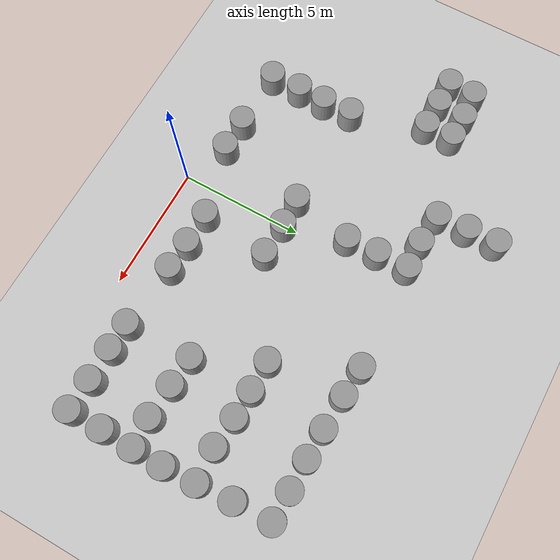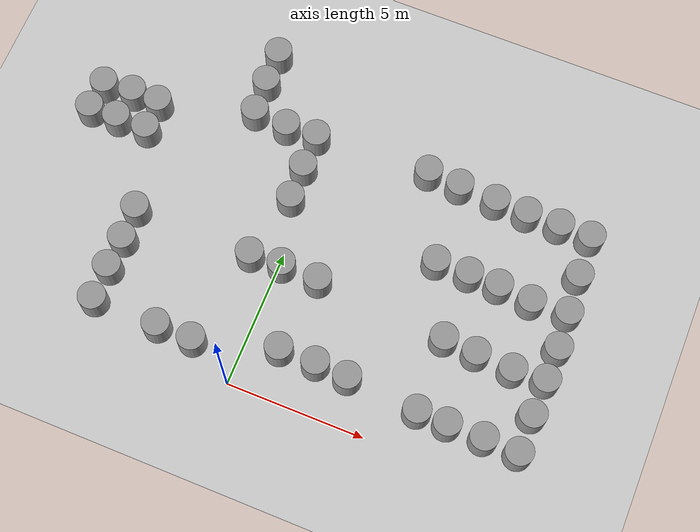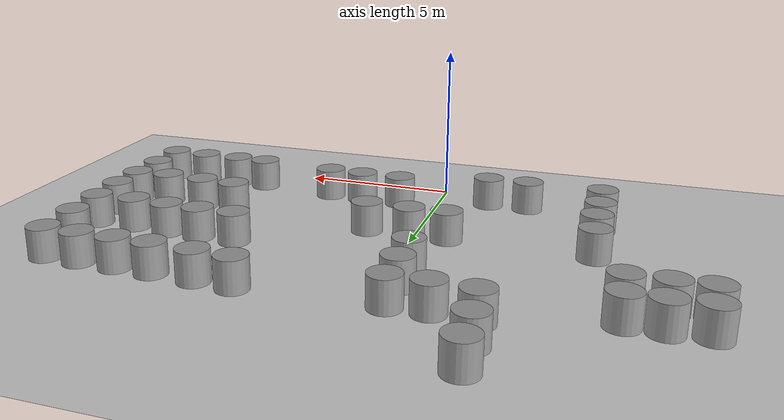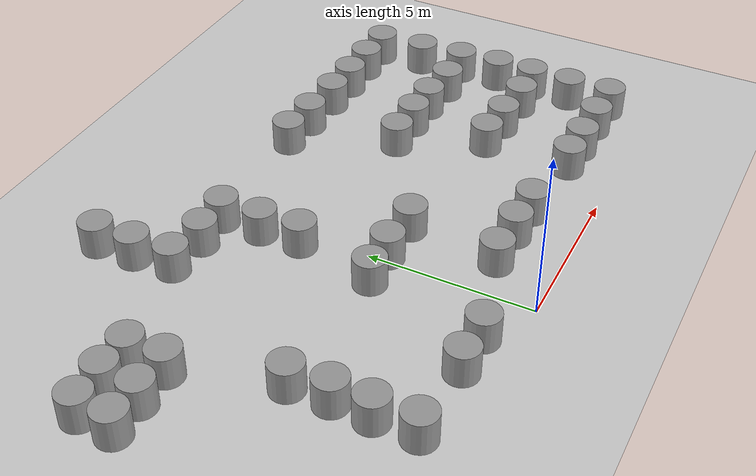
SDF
<sdf version="1.6">
 <world name="default">
  <model name="ground_plane">
   <static>1</static>
   <link name="link">
    <collision name="collision">
     <geometry><plane><normal>0 0 1</normal><size>100 100</size></plane></geometry>
     <surface><friction><ode><mu>100</mu><mu2>50</mu2></ode></friction></surface>
    </collision>
    <visual name="visual">
     <cast_shadows>0</cast_shadows>
     <geometry><plane><normal>0 0 1</normal><size>100 100</size></plane></geometry>
     <material>
      <script><uri>file://media/materials/scripts/gazebo.material</uri><name>Gazebo/Grey</name></script>
     </material>
    </visual>
   </link>
  </model>
  <model name="unit_cylinder_0">
   <pose>-8.51606 8.48994 0.499996 2e-06 -0 0</pose>
   <link name="link">
    <inertial>
     <mass>1</mass>
     <inertia><ixx>0.145833</ixx><ixy>0</ixy><ixz>0</ixz><iyy>0.145833</iyy><iyz>0</iyz><izz>0.125</izz></inertia>
    </inertial>
    <collision name="collision">
     <geometry><cylinder><radius>0.5</radius><length>1</length></cylinder></geometry>
    </collision>
    <visual name="visual">
     <geometry><cylinder><radius>0.5</radius><length>1</length></cylinder></geometry>
     <material>
      <script><name>Gazebo/Grey</name><uri>file://media/materials/scripts/gazebo.material</uri></script>
     </material>
    </visual>
   </link>
  </model>
  <model name="unit_cylinder_1">
   <pose>-7.41702 8.57099 0.499994 -2e-06 0 0</pose>
   <link name="link">
    <inertial>
     <mass>1</mass>
     <inertia><ixx>0.145833</ixx><ixy>0</ixy><ixz>0</ixz><iyy>0.145833</iyy><iyz>0</iyz><izz>0.125</izz></inertia>
    </inertial>
    <collision name="collision">
     <geometry><cylinder><radius>0.5</radius><length>1</length></cylinder></geometry>
    </collision>
    <visual name="visual">
     <geometry><cylinder><radius>0.5</radius><length>1</length></cylinder></geometry>
     <material>
      <script><name>Gazebo/Grey</name><uri>file://media/materials/scripts/gazebo.material</uri></script>
     </material>
    </visual>
   </link>
  </model>
  <model name="unit_cylinder_2">
   <pose>-6.39638 8.54646 0.499996 2e-06 -0 0</pose>
   <link name="link">
    <inertial>
     <mass>1</mass>
     <inertia><ixx>0.145833</ixx><ixy>0</ixy><ixz>0</ixz><iyy>0.145833</iyy><iyz>0</iyz><izz>0.125</izz></inertia>
    </inertial>
    <collision name="collision">
     <geometry><cylinder><radius>0.5</radius><length>1</length></cylinder></geometry>
    </collision>
    <visual name="visual">
     <geometry><cylinder><radius>0.5</radius><length>1</length></cylinder></geometry>
     <material>
      <script><name>Gazebo/Grey</name><uri>file://media/materials/scripts/gazebo.material</uri></script>
     </material>
    </visual>
   </link>
  </model>
  <model name="unit_cylinder_3">
   <pose>-8.57488 7.4197 0.499994 -2e-06 0 0</pose>
   <link name="link">
    <inertial>
     <mass>1</mass>
     <inertia><ixx>0.145833</ixx><ixy>0</ixy><ixz>0</ixz><iyy>0.145833</iyy><iyz>0</iyz><izz>0.125</izz></inertia>
    </inertial>
    <collision name="collision">
     <geometry><cylinder><radius>0.5</radius><length>1</length></cylinder></geometry>
    </collision>
    <visual name="visual">
     <geometry><cylinder><radius>0.5</radius><length>1</length></cylinder></geometry>
     <material>
      <script><name>Gazebo/Grey</name><uri>file://media/materials/scripts/gazebo.material</uri></script>
     </material>
    </visual>
   </link>
  </model>
  <model name="unit_cylinder_3_clone">
   <pose>-7.51975 7.42894 0.499996 2e-06 -0 0</pose>
   <link name="link">
    <inertial>
     <mass>1</mass>
     <inertia><ixx>0.145833</ixx><ixy>0</ixy><ixz>0</ixz><iyy>0.145833</iyy><iyz>0</iyz><izz>0.125</izz></inertia>
    </inertial>
    <collision name="collision">
     <geometry><cylinder><radius>0.5</radius><length>1</length></cylinder></geometry>
    </collision>
    <visual name="visual">
     <geometry><cylinder><radius>0.5</radius><length>1</length></cylinder></geometry>
     <material>
      <script><name>Gazebo/Grey</name><uri>file://media/materials/scripts/gazebo.material</uri></script>
     </material>
    </visual>
   </link>
  </model>
  <model name="unit_cylinder_3_clone_0">
   <pose>-6.37172 7.42467 0.499994 -2e-06 0 0</pose>
   <link name="link">
    <inertial>
     <mass>1</mass>
     <inertia><ixx>0.145833</ixx><ixy>0</ixy><ixz>0</ixz><iyy>0.145833</iyy><iyz>0</iyz><izz>0.125</izz></inertia>
    </inertial>
    <collision name="collision">
     <geometry><cylinder><radius>0.5</radius><length>1</length></cylinder></geometry>
    </collision>
    <visual name="visual">
     <geometry><cylinder><radius>0.5</radius><length>1</length></cylinder></geometry>
     <material>
      <script><name>Gazebo/Grey</name><uri>file://media/materials/scripts/gazebo.material</uri></script>
     </material>
    </visual>
   </link>
  </model>
  <model name="unit_cylinder_3_clone_1">
   <pose>-5.41765 4.49836 0.499996 2e-06 -0 0</pose>
   <link name="link">
    <inertial>
     <mass>1</mass>
     <inertia><ixx>0.145833</ixx><ixy>0</ixy><ixz>0</ixz><iyy>0.145833</iyy><iyz>0</iyz><izz>0.125</izz></inertia>
    </inertial>
    <collision name="collision">
     <geometry><cylinder><radius>0.5</radius><length>1</length></cylinder></geometry>
    </collision>
    <visual name="visual">
     <geometry><cylinder><radius>0.5</radius><length>1</length></cylinder></geometry>
     <material>
      <script><name>Gazebo/Grey</name><uri>file://media/materials/scripts/gazebo.material</uri></script>
     </material>
    </visual>
   </link>
  </model>
  <model name="unit_cylinder_3_clone_2">
   <pose>-5.36946 3.2912 0.499994 -2e-06 -1e-06 0</pose>
   <link name="link">
    <inertial>
     <mass>1</mass>
     <inertia><ixx>0.145833</ixx><ixy>0</ixy><ixz>0</ixz><iyy>0.145833</iyy><iyz>0</iyz><izz>0.125</izz></inertia>
    </inertial>
    <collision name="collision">
     <geometry><cylinder><radius>0.5</radius><length>1</length></cylinder></geometry>
    </collision>
    <visual name="visual">
     <geometry><cylinder><radius>0.5</radius><length>1</length></cylinder></geometry>
     <material>
      <script><name>Gazebo/Grey</name><uri>file://media/materials/scripts/gazebo.material</uri></script>
     </material>
    </visual>
   </link>
  </model>
  <model name="unit_cylinder_3_clone_3">
   <pose>-5.40207 2.1536 0.499996 2e-06 1e-06 0</pose>
   <link name="link">
    <inertial>
     <mass>1</mass>
     <inertia><ixx>0.145833</ixx><ixy>0</ixy><ixz>0</ixz><iyy>0.145833</iyy><iyz>0</iyz><izz>0.125</izz></inertia>
    </inertial>
    <collision name="collision">
     <geometry><cylinder><radius>0.5</radius><length>1</length></cylinder></geometry>
    </collision>
    <visual name="visual">
     <geometry><cylinder><radius>0.5</radius><length>1</length></cylinder></geometry>
     <material>
      <script><name>Gazebo/Grey</name><uri>file://media/materials/scripts/gazebo.material</uri></script>
     </material>
    </visual>
   </link>
  </model>
  <model name="unit_cylinder_3_clone_4">
   <pose>-5.37943 0.911977 0.499994 -2e-06 -1e-06 0</pose>
   <link name="link">
    <inertial>
     <mass>1</mass>
     <inertia><ixx>0.145833</ixx><ixy>0</ixy><ixz>0</ixz><iyy>0.145833</iyy><iyz>0</iyz><izz>0.125</izz></inertia>
    </inertial>
    <collision name="collision">
     <geometry><cylinder><radius>0.5</radius><length>1</length></cylinder></geometry>
    </collision>
    <visual name="visual">
     <geometry><cylinder><radius>0.5</radius><length>1</length></cylinder></geometry>
     <material>
      <script><name>Gazebo/Grey</name><uri>file://media/materials/scripts/gazebo.material</uri></script>
     </material>
    </visual>
   </link>
  </model>
  <model name="unit_cylinder_3_clone_6">
   <pose>-2.96863 0.874308 0.499994 -2e-06 -1e-06 0</pose>
   <link name="link">
    <inertial>
     <mass>1</mass>
     <inertia><ixx>0.145833</ixx><ixy>0</ixy><ixz>0</ixz><iyy>0.145833</iyy><iyz>0</iyz><izz>0.125</izz></inertia>
    </inertial>
    <collision name="collision">
     <geometry><cylinder><radius>0.5</radius><length>1</length></cylinder></geometry>
    </collision>
    <visual name="visual">
     <geometry><cylinder><radius>0.5</radius><length>1</length></cylinder></geometry>
     <material>
      <script><name>Gazebo/Grey</name><uri>file://media/materials/scripts/gazebo.material</uri></script>
     </material>
    </visual>
   </link>
  </model>
  <model name="unit_cylinder_3_clone_7">
   <pose>-1.65108 0.864726 0.499996 2e-06 1e-06 0</pose>
   <link name="link">
    <inertial>
     <mass>1</mass>
     <inertia><ixx>0.145833</ixx><ixy>0</ixy><ixz>0</ixz><iyy>0.145833</iyy><iyz>0</iyz><izz>0.125</izz></inertia>
    </inertial>
    <collision name="collision">
     <geometry><cylinder><radius>0.5</radius><length>1</length></cylinder></geometry>
    </collision>
    <visual name="visual">
     <geometry><cylinder><radius>0.5</radius><length>1</length></cylinder></geometry>
     <material>
      <script><name>Gazebo/Grey</name><uri>file://media/materials/scripts/gazebo.material</uri></script>
     </material>
    </visual>
   </link>
  </model>
  <model name="unit_cylinder_3_clone_17">
   <pose>-1.02332 4.44056 0.499996 3e-06 1e-06 -0</pose>
   <link name="link">
    <inertial>
     <mass>1</mass>
     <inertia><ixx>0.145833</ixx><ixy>0</ixy><ixz>0</ixz><iyy>0.145833</iyy><iyz>0</iyz><izz>0.125</izz></inertia>
    </inertial>
    <collision name="collision">
     <geometry><cylinder><radius>0.5</radius><length>1</length></cylinder></geometry>
    </collision>
    <visual name="visual">
     <geometry><cylinder><radius>0.5</radius><length>1</length></cylinder></geometry>
     <material>
      <script><name>Gazebo/Grey</name><uri>file://media/materials/scripts/gazebo.material</uri></script>
     </material>
    </visual>
   </link>
  </model>
  <model name="unit_cylinder_3_clone_18">
   <pose>0.150944 4.48466 0.499994 -3e-06 -1e-06 -0</pose>
   <link name="link">
    <inertial>
     <mass>1</mass>
     <inertia><ixx>0.145833</ixx><ixy>0</ixy><ixz>0</ixz><iyy>0.145833</iyy><iyz>0</iyz><izz>0.125</izz></inertia>
    </inertial>
    <collision name="collision">
     <geometry><cylinder><radius>0.5</radius><length>1</length></cylinder></geometry>
    </collision>
    <visual name="visual">
     <geometry><cylinder><radius>0.5</radius><length>1</length></cylinder></geometry>
     <material>
      <script><name>Gazebo/Grey</name><uri>file://media/materials/scripts/gazebo.material</uri></script>
     </material>
    </visual>
   </link>
  </model>
  <model name="unit_cylinder_3_clone_19">
   <pose>1.52572 4.44658 0.499996 3e-06 1e-06 -0</pose>
   <link name="link">
    <inertial>
     <mass>1</mass>
     <inertia><ixx>0.145833</ixx><ixy>0</ixy><ixz>0</ixz><iyy>0.145833</iyy><iyz>0</iyz><izz>0.125</izz></inertia>
    </inertial>
    <collision name="collision">
     <geometry><cylinder><radius>0.5</radius><length>1</length></cylinder></geometry>
    </collision>
    <visual name="visual">
     <geometry><cylinder><radius>0.5</radius><length>1</length></cylinder></geometry>
     <material>
      <script><name>Gazebo/Grey</name><uri>file://media/materials/scripts/gazebo.material</uri></script>
     </material>
    </visual>
   </link>
  </model>
  <model name="unit_cylinder_3_clone_20">
   <pose>3.64653 9.65426 0.499994 -3e-06 -1e-06 -0</pose>
   <link name="link">
    <inertial>
     <mass>1</mass>
     <inertia><ixx>0.145833</ixx><ixy>0</ixy><ixz>0</ixz><iyy>0.145833</iyy><iyz>0</iyz><izz>0.125</izz></inertia>
    </inertial>
    <collision name="collision">
     <geometry><cylinder><radius>0.5</radius><length>1</length></cylinder></geometry>
    </collision>
    <visual name="visual">
     <geometry><cylinder><radius>0.5</radius><length>1</length></cylinder></geometry>
     <material>
      <script><name>Gazebo/Grey</name><uri>file://media/materials/scripts/gazebo.material</uri></script>
     </material>
    </visual>
   </link>
  </model>
  <model name="unit_cylinder_3_clone_21">
   <pose>4.85553 9.57337 0.499996 3e-06 1e-06 -0</pose>
   <link name="link">
    <inertial>
     <mass>1</mass>
     <inertia><ixx>0.145833</ixx><ixy>0</ixy><ixz>0</ixz><iyy>0.145833</iyy><iyz>0</iyz><izz>0.125</izz></inertia>
    </inertial>
    <collision name="collision">
     <geometry><cylinder><radius>0.5</radius><length>1</length></cylinder></geometry>
    </collision>
    <visual name="visual">
     <geometry><cylinder><radius>0.5</radius><length>1</length></cylinder></geometry>
     <material>
      <script><name>Gazebo/Grey</name><uri>file://media/materials/scripts/gazebo.material</uri></script>
     </material>
    </visual>
   </link>
  </model>
  <model name="unit_cylinder_3_clone_22">
   <pose>6.2344 9.50314 0.499994 -3e-06 -1e-06 -0</pose>
   <link name="link">
    <inertial>
     <mass>1</mass>
     <inertia><ixx>0.145833</ixx><ixy>0</ixy><ixz>0</ixz><iyy>0.145833</iyy><iyz>0</iyz><izz>0.125</izz></inertia>
    </inertial>
    <collision name="collision">
     <geometry><cylinder><radius>0.5</radius><length>1</length></cylinder></geometry>
    </collision>
    <visual name="visual">
     <geometry><cylinder><radius>0.5</radius><length>1</length></cylinder></geometry>
     <material>
      <script><name>Gazebo/Grey</name><uri>file://media/materials/scripts/gazebo.material</uri></script>
     </material>
    </visual>
   </link>
  </model>
  <model name="unit_cylinder_3_clone_23">
   <pose>7.41881 9.47437 0.499996 3e-06 1e-06 -0</pose>
   <link name="link">
    <inertial>
     <mass>1</mass>
     <inertia><ixx>0.145833</ixx><ixy>0</ixy><ixz>0</ixz><iyy>0.145833</iyy><iyz>0</iyz><izz>0.125</izz></inertia>
    </inertial>
    <collision name="collision">
     <geometry><cylinder><radius>0.5</radius><length>1</length></cylinder></geometry>
    </collision>
    <visual name="visual">
     <geometry><cylinder><radius>0.5</radius><length>1</length></cylinder></geometry>
     <material>
      <script><name>Gazebo/Grey</name><uri>file://media/materials/scripts/gazebo.material</uri></script>
     </material>
    </visual>
   </link>
  </model>
  <model name="unit_cylinder_3_clone_24">
   <pose>8.621 9.4767 0.499994 -3e-06 -1e-06 -0</pose>
   <link name="link">
    <inertial>
     <mass>1</mass>
     <inertia><ixx>0.145833</ixx><ixy>0</ixy><ixz>0</ixz><iyy>0.145833</iyy><iyz>0</iyz><izz>0.125</izz></inertia>
    </inertial>
    <collision name="collision">
     <geometry><cylinder><radius>0.5</radius><length>1</length></cylinder></geometry>
    </collision>
    <visual name="visual">
     <geometry><cylinder><radius>0.5</radius><length>1</length></cylinder></geometry>
     <material>
      <script><name>Gazebo/Grey</name><uri>file://media/materials/scripts/gazebo.material</uri></script>
     </material>
    </visual>
   </link>
  </model>
  <model name="unit_cylinder_3_clone_25">
   <pose>9.77818 9.44871 0.499996 3e-06 1e-06 -0</pose>
   <link name="link">
    <inertial>
     <mass>1</mass>
     <inertia><ixx>0.145833</ixx><ixy>0</ixy><ixz>0</ixz><iyy>0.145833</iyy><iyz>0</iyz><izz>0.125</izz></inertia>
    </inertial>
    <collision name="collision">
     <geometry><cylinder><radius>0.5</radius><length>1</length></cylinder></geometry>
    </collision>
    <visual name="visual">
     <geometry><cylinder><radius>0.5</radius><length>1</length></cylinder></geometry>
     <material>
      <script><name>Gazebo/Grey</name><uri>file://media/materials/scripts/gazebo.material</uri></script>
     </material>
    </visual>
   </link>
  </model>
  <model name="unit_cylinder_3_clone_26">
   <pose>9.84593 7.94617 0.499994 -3e-06 -1e-06 -0</pose>
   <link name="link">
    <inertial>
     <mass>1</mass>
     <inertia><ixx>0.145833</ixx><ixy>0</ixy><ixz>0</ixz><iyy>0.145833</iyy><iyz>0</iyz><izz>0.125</izz></inertia>
    </inertial>
    <collision name="collision">
     <geometry><cylinder><radius>0.5</radius><length>1</length></cylinder></geometry>
    </collision>
    <visual name="visual">
     <geometry><cylinder><radius>0.5</radius><length>1</length></cylinder></geometry>
     <material>
      <script><name>Gazebo/Grey</name><uri>file://media/materials/scripts/gazebo.material</uri></script>
     </material>
    </visual>
   </link>
  </model>
  <model name="unit_cylinder_3_clone_27">
   <pose>9.947 6.53993 0.499996 3e-06 1e-06 -0</pose>
   <link name="link">
    <inertial>
     <mass>1</mass>
     <inertia><ixx>0.145833</ixx><ixy>0</ixy><ixz>0</ixz><iyy>0.145833</iyy><iyz>0</iyz><izz>0.125</izz></inertia>
    </inertial>
    <collision name="collision">
     <geometry><cylinder><radius>0.5</radius><length>1</length></cylinder></geometry>
    </collision>
    <visual name="visual">
     <geometry><cylinder><radius>0.5</radius><length>1</length></cylinder></geometry>
     <material>
      <script><name>Gazebo/Grey</name><uri>file://media/materials/scripts/gazebo.material</uri></script>
     </material>
    </visual>
   </link>
  </model>
  <model name="unit_cylinder_3_clone_28">
   <pose>8.62726 6.4657 0.499996 3e-06 1e-06 -0</pose>
   <link name="link">
    <inertial>
     <mass>1</mass>
     <inertia><ixx>0.145833</ixx><ixy>0</ixy><ixz>0</ixz><iyy>0.145833</iyy><iyz>0</iyz><izz>0.125</izz></inertia>
    </inertial>
    <collision name="collision">
     <geometry><cylinder><radius>0.5</radius><length>1</length></cylinder></geometry>
    </collision>
    <visual name="visual">
     <geometry><cylinder><radius>0.5</radius><length>1</length></cylinder></geometry>
     <material>
      <script><name>Gazebo/Grey</name><uri>file://media/materials/scripts/gazebo.material</uri></script>
     </material>
    </visual>
   </link>
  </model>
  <model name="unit_cylinder_3_clone_29">
   <pose>7.39694 6.57753 0.499996 3e-06 1e-06 -0</pose>
   <link name="link">
    <inertial>
     <mass>1</mass>
     <inertia><ixx>0.145833</ixx><ixy>0</ixy><ixz>0</ixz><iyy>0.145833</iyy><iyz>0</iyz><izz>0.125</izz></inertia>
    </inertial>
    <collision name="collision">
     <geometry><cylinder><radius>0.5</radius><length>1</length></cylinder></geometry>
    </collision>
    <visual name="visual">
     <geometry><cylinder><radius>0.5</radius><length>1</length></cylinder></geometry>
     <material>
      <script><name>Gazebo/Grey</name><uri>file://media/materials/scripts/gazebo.material</uri></script>
     </material>
    </visual>
   </link>
  </model>
  <model name="unit_cylinder_3_clone_30">
   <pose>6.29583 6.60404 0.499994 -3e-06 -1e-06 -0</pose>
   <link name="link">
    <inertial>
     <mass>1</mass>
     <inertia><ixx>0.145833</ixx><ixy>0</ixy><ixz>0</ixz><iyy>0.145833</iyy><iyz>0</iyz><izz>0.125</izz></inertia>
    </inertial>
    <collision name="collision">
     <geometry><cylinder><radius>0.5</radius><length>1</length></cylinder></geometry>
    </collision>
    <visual name="visual">
     <geometry><cylinder><radius>0.5</radius><length>1</length></cylinder></geometry>
     <material>
      <script><name>Gazebo/Grey</name><uri>file://media/materials/scripts/gazebo.material</uri></script>
     </material>
    </visual>
   </link>
  </model>
  <model name="unit_cylinder_3_clone_31">
   <pose>5.08248 6.60278 0.499994 -3e-06 -1e-06 -0</pose>
   <link name="link">
    <inertial>
     <mass>1</mass>
     <inertia><ixx>0.145833</ixx><ixy>0</ixy><ixz>0</ixz><iyy>0.145833</iyy><iyz>0</iyz><izz>0.125</izz></inertia>
    </inertial>
    <collision name="collision">
     <geometry><cylinder><radius>0.5</radius><length>1</length></cylinder></geometry>
    </collision>
    <visual name="visual">
     <geometry><cylinder><radius>0.5</radius><length>1</length></cylinder></geometry>
     <material>
      <script><name>Gazebo/Grey</name><uri>file://media/materials/scripts/gazebo.material</uri></script>
     </material>
    </visual>
   </link>
  </model>
  <model name="unit_cylinder_3_clone_32">
   <pose>10.0259 5.2307 0.499994 -3e-06 -1e-06 -0</pose>
   <link name="link">
    <inertial>
     <mass>1</mass>
     <inertia><ixx>0.145833</ixx><ixy>0</ixy><ixz>0</ixz><iyy>0.145833</iyy><iyz>0</iyz><izz>0.125</izz></inertia>
    </inertial>
    <collision name="collision">
     <geometry><cylinder><radius>0.5</radius><length>1</length></cylinder></geometry>
    </collision>
    <visual name="visual">
     <geometry><cylinder><radius>0.5</radius><length>1</length></cylinder></geometry>
     <material>
      <script><name>Gazebo/Grey</name><uri>file://media/materials/scripts/gazebo.material</uri></script>
     </material>
    </visual>
   </link>
  </model>
  <model name="unit_cylinder_3_clone_33">
   <pose>10.016 4.01311 0.499996 3e-06 1e-06 -0</pose>
   <link name="link">
    <inertial>
     <mass>1</mass>
     <inertia><ixx>0.145833</ixx><ixy>0</ixy><ixz>0</ixz><iyy>0.145833</iyy><iyz>0</iyz><izz>0.125</izz></inertia>
    </inertial>
    <collision name="collision">
     <geometry><cylinder><radius>0.5</radius><length>1</length></cylinder></geometry>
    </collision>
    <visual name="visual">
     <geometry><cylinder><radius>0.5</radius><length>1</length></cylinder></geometry>
     <material>
      <script><name>Gazebo/Grey</name><uri>file://media/materials/scripts/gazebo.material</uri></script>
     </material>
    </visual>
   </link>
  </model>
  <model name="unit_cylinder_3_clone_34">
   <pose>8.84533 3.9381 0.499996 3e-06 1e-06 -0</pose>
   <link name="link">
    <inertial>
     <mass>1</mass>
     <inertia><ixx>0.145833</ixx><ixy>0</ixy><ixz>0</ixz><iyy>0.145833</iyy><iyz>0</iyz><izz>0.125</izz></inertia>
    </inertial>
    <collision name="collision">
     <geometry><cylinder><radius>0.5</radius><length>1</length></cylinder></geometry>
    </collision>
    <visual name="visual">
     <geometry><cylinder><radius>0.5</radius><length>1</length></cylinder></geometry>
     <material>
      <script><name>Gazebo/Grey</name><uri>file://media/materials/scripts/gazebo.material</uri></script>
     </material>
    </visual>
   </link>
  </model>
  <model name="unit_cylinder_3_clone_35">
   <pose>7.50389 4.0209 0.499994 -3e-06 -1e-06 -0</pose>
   <link name="link">
    <inertial>
     <mass>1</mass>
     <inertia><ixx>0.145833</ixx><ixy>0</ixy><ixz>0</ixz><iyy>0.145833</iyy><iyz>0</iyz><izz>0.125</izz></inertia>
    </inertial>
    <collision name="collision">
     <geometry><cylinder><radius>0.5</radius><length>1</length></cylinder></geometry>
    </collision>
    <visual name="visual">
     <geometry><cylinder><radius>0.5</radius><length>1</length></cylinder></geometry>
     <material>
      <script><name>Gazebo/Grey</name><uri>file://media/materials/scripts/gazebo.material</uri></script>
     </material>
    </visual>
   </link>
  </model>
  <model name="unit_cylinder_3_clone_36">
   <pose>6.30939 4.09724 0.499994 -3e-06 -1e-06 -0</pose>
   <link name="link">
    <inertial>
     <mass>1</mass>
     <inertia><ixx>0.145833</ixx><ixy>0</ixy><ixz>0</ixz><iyy>0.145833</iyy><iyz>0</iyz><izz>0.125</izz></inertia>
    </inertial>
    <collision name="collision">
     <geometry><cylinder><radius>0.5</radius><length>1</length></cylinder></geometry>
    </collision>
    <visual name="visual">
     <geometry><cylinder><radius>0.5</radius><length>1</length></cylinder></geometry>
     <material>
      <script><name>Gazebo/Grey</name><uri>file://media/materials/scripts/gazebo.material</uri></script>
     </material>
    </visual>
   </link>
  </model>
  <model name="unit_cylinder_3_clone_37">
   <pose>9.99266 2.70377 0.499996 3e-06 1e-06 -0</pose>
   <link name="link">
    <inertial>
     <mass>1</mass>
     <inertia><ixx>0.145833</ixx><ixy>0</ixy><ixz>0</ixz><iyy>0.145833</iyy><iyz>0</iyz><izz>0.125</izz></inertia>
    </inertial>
    <collision name="collision">
     <geometry><cylinder><radius>0.5</radius><length>1</length></cylinder></geometry>
    </collision>
    <visual name="visual">
     <geometry><cylinder><radius>0.5</radius><length>1</length></cylinder></geometry>
     <material>
      <script><name>Gazebo/Grey</name><uri>file://media/materials/scripts/gazebo.material</uri></script>
     </material>
    </visual>
   </link>
  </model>
  <model name="unit_cylinder_3_clone_38">
   <pose>9.99719 1.33401 0.499996 3e-06 1e-06 -0</pose>
   <link name="link">
    <inertial>
     <mass>1</mass>
     <inertia><ixx>0.145833</ixx><ixy>0</ixy><ixz>0</ixz><iyy>0.145833</iyy><iyz>0</iyz><izz>0.125</izz></inertia>
    </inertial>
    <collision name="collision">
     <geometry><cylinder><radius>0.5</radius><length>1</length></cylinder></geometry>
    </collision>
    <visual name="visual">
     <geometry><cylinder><radius>0.5</radius><length>1</length></cylinder></geometry>
     <material>
      <script><name>Gazebo/Grey</name><uri>file://media/materials/scripts/gazebo.material</uri></script>
     </material>
    </visual>
   </link>
  </model>
  <model name="unit_cylinder_3_clone_39">
   <pose>8.7472 1.36951 0.499996 3e-06 1e-06 -0</pose>
   <link name="link">
    <inertial>
     <mass>1</mass>
     <inertia><ixx>0.145833</ixx><ixy>0</ixy><ixz>0</ixz><iyy>0.145833</iyy><iyz>0</iyz><izz>0.125</izz></inertia>
    </inertial>
    <collision name="collision">
     <geometry><cylinder><radius>0.5</radius><length>1</length></cylinder></geometry>
    </collision>
    <visual name="visual">
     <geometry><cylinder><radius>0.5</radius><length>1</length></cylinder></geometry>
     <material>
      <script><name>Gazebo/Grey</name><uri>file://media/materials/scripts/gazebo.material</uri></script>
     </material>
    </visual>
   </link>
  </model>
  <model name="unit_cylinder_3_clone_40">
   <pose>7.45409 1.37607 0.499994 -3e-06 -1e-06 -0</pose>
   <link name="link">
    <inertial>
     <mass>1</mass>
     <inertia><ixx>0.145833</ixx><ixy>0</ixy><ixz>0</ixz><iyy>0.145833</iyy><iyz>0</iyz><izz>0.125</izz></inertia>
    </inertial>
    <collision name="collision">
     <geometry><cylinder><radius>0.5</radius><length>1</length></cylinder></geometry>
    </collision>
    <visual name="visual">
     <geometry><cylinder><radius>0.5</radius><length>1</length></cylinder></geometry>
     <material>
      <script><name>Gazebo/Grey</name><uri>file://media/materials/scripts/gazebo.material</uri></script>
     </material>
    </visual>
   </link>
  </model>
  <model name="unit_cylinder_3_clone_41">
   <pose>6.36195 1.40392 0.499994 -3e-06 -1e-06 -0</pose>
   <link name="link">
    <inertial>
     <mass>1</mass>
     <inertia><ixx>0.145833</ixx><ixy>0</ixy><ixz>0</ixz><iyy>0.145833</iyy><iyz>0</iyz><izz>0.125</izz></inertia>
    </inertial>
    <collision name="collision">
     <geometry><cylinder><radius>0.5</radius><length>1</length></cylinder></geometry>
    </collision>
    <visual name="visual">
     <geometry><cylinder><radius>0.5</radius><length>1</length></cylinder></geometry>
     <material>
      <script><name>Gazebo/Grey</name><uri>file://media/materials/scripts/gazebo.material</uri></script>
     </material>
    </visual>
   </link>
  </model>
  <model name="unit_cylinder_3_clone_42">
   <pose>1.24006 1.67277 0.499994 -3e-06 -1e-06 -0</pose>
   <link name="link">
    <inertial>
     <mass>1</mass>
     <inertia><ixx>0.145833</ixx><ixy>0</ixy><ixz>0</ixz><iyy>0.145833</iyy><iyz>0</iyz><izz>0.125</izz></inertia>
    </inertial>
    <collision name="collision">
     <geometry><cylinder><radius>0.5</radius><length>1</length></cylinder></geometry>
    </collision>
    <visual name="visual">
     <geometry><cylinder><radius>0.5</radius><length>1</length></cylinder></geometry>
     <material>
      <script><name>Gazebo/Grey</name><uri>file://media/materials/scripts/gazebo.material</uri></script>
     </material>
    </visual>
   </link>
  </model>
  <model name="unit_cylinder_3_clone_43">
   <pose>2.58391 1.66549 0.499994 -3e-06 -1e-06 -0</pose>
   <link name="link">
    <inertial>
     <mass>1</mass>
     <inertia><ixx>0.145833</ixx><ixy>0</ixy><ixz>0</ixz><iyy>0.145833</iyy><iyz>0</iyz><izz>0.125</izz></inertia>
    </inertial>
    <collision name="collision">
     <geometry><cylinder><radius>0.5</radius><length>1</length></cylinder></geometry>
    </collision>
    <visual name="visual">
     <geometry><cylinder><radius>0.5</radius><length>1</length></cylinder></geometry>
     <material>
      <script><name>Gazebo/Grey</name><uri>file://media/materials/scripts/gazebo.material</uri></script>
     </material>
    </visual>
   </link>
  </model>
  <model name="unit_cylinder_3_clone_44">
   <pose>3.76672 1.6047 0.499997 3e-06 2e-06 0</pose>
   <link name="link">
    <inertial>
     <mass>1</mass>
     <inertia><ixx>0.145833</ixx><ixy>0</ixy><ixz>0</ixz><iyy>0.145833</iyy><iyz>0</iyz><izz>0.125</izz></inertia>
    </inertial>
    <collision name="collision">
     <geometry><cylinder><radius>0.5</radius><length>1</length></cylinder></geometry>
    </collision>
    <visual name="visual">
     <geometry><cylinder><radius>0.5</radius><length>1</length></cylinder></geometry>
     <material>
      <script><name>Gazebo/Grey</name><uri>file://media/materials/scripts/gazebo.material</uri></script>
     </material>
    </visual>
   </link>
  </model>
  <model name="unit_cylinder_3_clone_59">
   <pose>-3.10643 11.9697 0.499998 3e-06 4e-06 -0</pose>
   <link name="link">
    <inertial>
     <mass>1</mass>
     <inertia><ixx>0.145833</ixx><ixy>0</ixy><ixz>0</ixz><iyy>0.145833</iyy><iyz>0</iyz><izz>0.125</izz></inertia>
    </inertial>
    <collision name="collision">
     <geometry><cylinder><radius>0.5</radius><length>1</length></cylinder></geometry>
    </collision>
    <visual name="visual">
     <geometry><cylinder><radius>0.5</radius><length>1</length></cylinder></geometry>
     <material>
      <script><name>Gazebo/Grey</name><uri>file://media/materials/scripts/gazebo.material</uri></script>
     </material>
    </visual>
   </link>
  </model>
  <model name="unit_cylinder_3_clone_60">
   <pose>-3.07891 10.7526 0.499994 -4e-06 -3e-06 -0</pose>
   <link name="link">
    <inertial>
     <mass>1</mass>
     <inertia><ixx>0.145833</ixx><ixy>0</ixy><ixz>0</ixz><iyy>0.145833</iyy><iyz>0</iyz><izz>0.125</izz></inertia>
    </inertial>
    <collision name="collision">
     <geometry><cylinder><radius>0.5</radius><length>1</length></cylinder></geometry>
    </collision>
    <visual name="visual">
     <geometry><cylinder><radius>0.5</radius><length>1</length></cylinder></geometry>
     <material>
      <script><name>Gazebo/Grey</name><uri>file://media/materials/scripts/gazebo.material</uri></script>
     </material>
    </visual>
   </link>
  </model>
  <model name="unit_cylinder_3_clone_61">
   <pose>-3 9.51742 0.499994 -4e-06 -3e-06 -0</pose>
   <link name="link">
    <inertial>
     <mass>1</mass>
     <inertia><ixx>0.145833</ixx><ixy>0</ixy><ixz>0</ixz><iyy>0.145833</iyy><iyz>0</iyz><izz>0.125</izz></inertia>
    </inertial>
    <collision name="collision">
     <geometry><cylinder><radius>0.5</radius><length>1</length></cylinder></geometry>
    </collision>
    <visual name="visual">
     <geometry><cylinder><radius>0.5</radius><length>1</length></cylinder></geometry>
     <material>
      <script><name>Gazebo/Grey</name><uri>file://media/materials/scripts/gazebo.material</uri></script>
     </material>
    </visual>
   </link>
  </model>
  <model name="unit_cylinder_3_clone_62">
   <pose>-1.72823 9.40586 0.499994 -4e-06 -3e-06 -0</pose>
   <link name="link">
    <inertial>
     <mass>1</mass>
     <inertia><ixx>0.145833</ixx><ixy>0</ixy><ixz>0</ixz><iyy>0.145833</iyy><iyz>0</iyz><izz>0.125</izz></inertia>
    </inertial>
    <collision name="collision">
     <geometry><cylinder><radius>0.5</radius><length>1</length></cylinder></geometry>
    </collision>
    <visual name="visual">
     <geometry><cylinder><radius>0.5</radius><length>1</length></cylinder></geometry>
     <material>
      <script><name>Gazebo/Grey</name><uri>file://media/materials/scripts/gazebo.material</uri></script>
     </material>
    </visual>
   </link>
  </model>
  <model name="unit_cylinder_3_clone_63">
   <pose>-0.573525 9.43759 0.499998 3e-06 -2e-06 0</pose>
   <link name="link">
    <inertial>
     <mass>1</mass>
     <inertia><ixx>0.145833</ixx><ixy>0</ixy><ixz>0</ixz><iyy>0.145833</iyy><iyz>0</iyz><izz>0.125</izz></inertia>
    </inertial>
    <collision name="collision">
     <geometry><cylinder><radius>0.5</radius><length>1</length></cylinder></geometry>
    </collision>
    <visual name="visual">
     <geometry><cylinder><radius>0.5</radius><length>1</length></cylinder></geometry>
     <material>
      <script><name>Gazebo/Grey</name><uri>file://media/materials/scripts/gazebo.material</uri></script>
     </material>
    </visual>
   </link>
  </model>
  <model name="unit_cylinder_3_clone_64">
   <pose>-0.560051 8.17108 0.499998 3e-06 -2e-06 0</pose>
   <link name="link">
    <inertial>
     <mass>1</mass>
     <inertia><ixx>0.145833</ixx><ixy>0</ixy><ixz>0</ixz><iyy>0.145833</iyy><iyz>0</iyz><izz>0.125</izz></inertia>
    </inertial>
    <collision name="collision">
     <geometry><cylinder><radius>0.5</radius><length>1</length></cylinder></geometry>
    </collision>
    <visual name="visual">
     <geometry><cylinder><radius>0.5</radius><length>1</length></cylinder></geometry>
     <material>
      <script><name>Gazebo/Grey</name><uri>file://media/materials/scripts/gazebo.material</uri></script>
     </material>
    </visual>
   </link>
  </model>
  <model name="unit_cylinder_3_clone_65">
   <pose>-0.516945 6.90354 0.499992 -3e-06 2e-06 0</pose>
   <link name="link">
    <inertial>
     <mass>1</mass>
     <inertia><ixx>0.145833</ixx><ixy>0</ixy><ixz>0</ixz><iyy>0.145833</iyy><iyz>0</iyz><izz>0.125</izz></inertia>
    </inertial>
    <collision name="collision">
     <geometry><cylinder><radius>0.5</radius><length>1</length></cylinder></geometry>
    </collision>
    <visual name="visual">
     <geometry><cylinder><radius>0.5</radius><length>1</length></cylinder></geometry>
     <material>
      <script><name>Gazebo/Grey</name><uri>file://media/materials/scripts/gazebo.material</uri></script>
     </material>
    </visual>
   </link>
  </model>
 </world>
</sdf>
